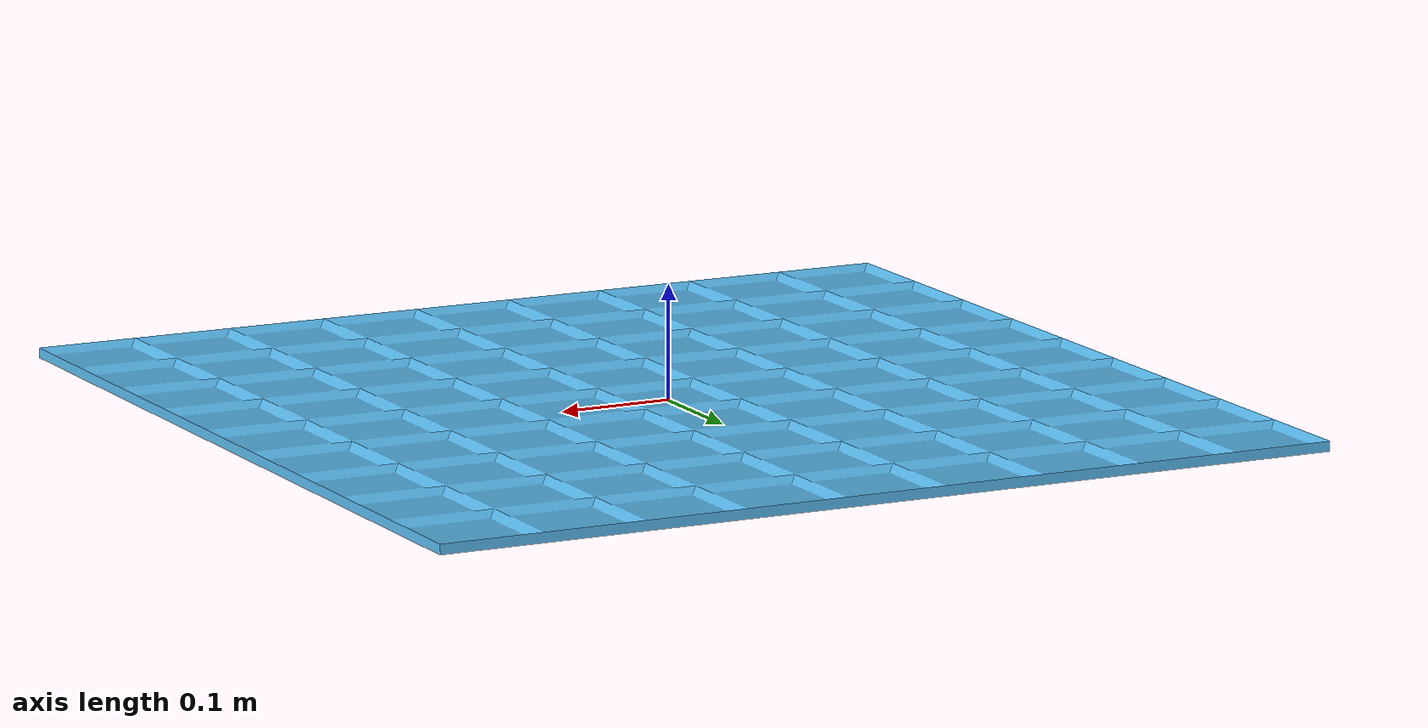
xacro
<?xml version="1.0"?>
<robot xmlns:xacro="http://wiki.ros.org/xacro" name="playground">

    <!-- Note: Only use this URDF when testing the inchworm kinematics.
    The inchworm will be fixed to a specific position as determined under 'Static Joint to World Frame' comment -->

    <!-- Import Gazebo ROS Control Plugin -->
    <gazebo>
        <plugin name="gazebo_ros_control" filename="libgazebo_ros_control.so">
            <robotNamespace>/playground</robotNamespace>
        </plugin>
    </gazebo>

    <!-- Static Joint to World Frame in Simulation -->
    <link name="world"/>

    <joint name="joint_name" type="fixed">
        <origin xyz="0.0 0.0 0.0" rpy="0.0 0.0 0.0"/>
        <parent link="world"/>
        <!-- Uncomment below if you want to test general kinematics or end effector -->
        <child link="playground"/>
        <!-- Uncomment below if you want to test front foot kinematics -->
        <!-- Uncomment below if you want to test back foot kinematics -->
    </joint>

    <!-- Links -->
    <link name="playground">
        <visual>
            <origin xyz="0 0 0" rpy="0 0 0"/>
            <geometry>
                <mesh filename="package://inchworm_project_gazebo/models/playground/playground.dae"/>
            </geometry>
        </visual>
        <collision>
            <origin xyz="0 0 0" rpy="0.0 0.0 0.0"/>
            <geometry>
                <mesh filename="package://inchworm_project_gazebo/models/playground/playground.dae"/>
            </geometry>
        </collision>
        <inertial>
            <origin xyz="0.0 0.0 0.0" rpy="0.0 0.0 0.0"/>
            <mass value="0.1"/>
            <inertia ixx="0.0" ixy="0.0" ixz="0.0" iyy="0.0" iyz="0.0" izz="0.0"/>
        </inertial>
    </link>

</robot>
